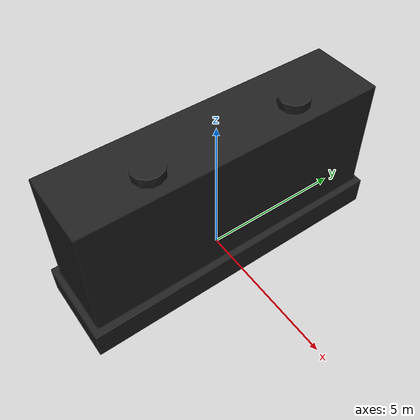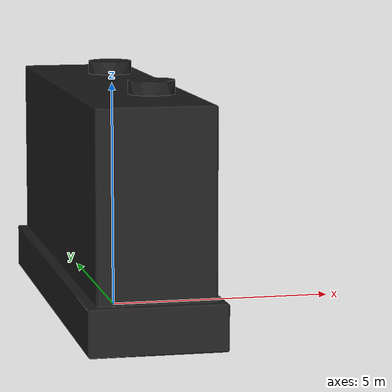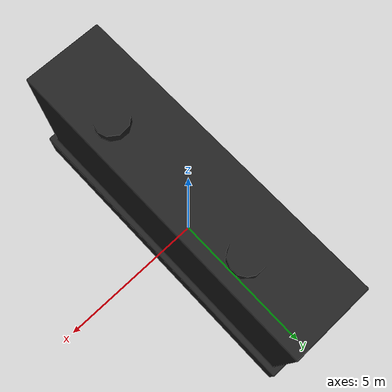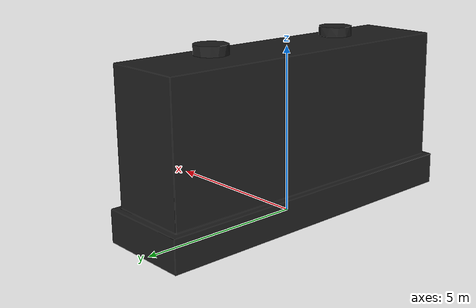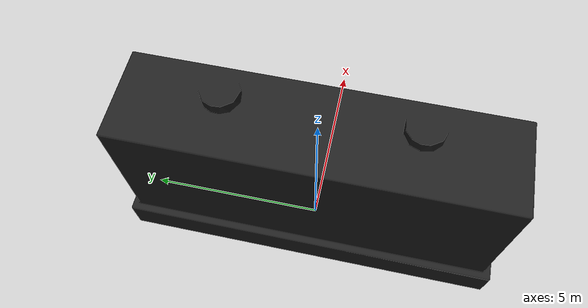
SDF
<?xml version="1.0" ?>
<sdf version="1.4">
  <model name="camera">
    <pose>0 0 0 -1.5707963267948966 0 -1.5707963267948966</pose>
    <link name="link">
      <pose>0 0 0 0 0 0</pose>
      <visual name="visual">
        <geometry>
          <mesh>
            <scale>1 1 1</scale>
            <uri>model://camera/meshes/camera.dae</uri>
          </mesh>
        </geometry>
        <material>
          <script>
            <name>Gazebo/FlatBlack</name>
            <uri>file://camera/materials/scripts/gazebo.material</uri>
          </script>
        </material>
      </visual>
    <sensor type="camera" name="camera">
      <update_rate>10</update_rate>
      <pose>0 0 0 0 -1.5707963267948966 1.5707963267948966</pose>
      <camera>
        <horizontal_fov>1.047198</horizontal_fov>
        <image>
          <width>640</width>
          <height>480</height>
        </image>
        <clip>
          <near>0.05</near>
          <far>2</far>
        </clip>
      </camera>
      <plugin filename="libgazebo_ros_rgb_camera.so" name="camera_plugin" />
      <always_on>1</always_on>
      <visualize>true</visualize>
    </sensor>
    </link>
  </model>
</sdf>
